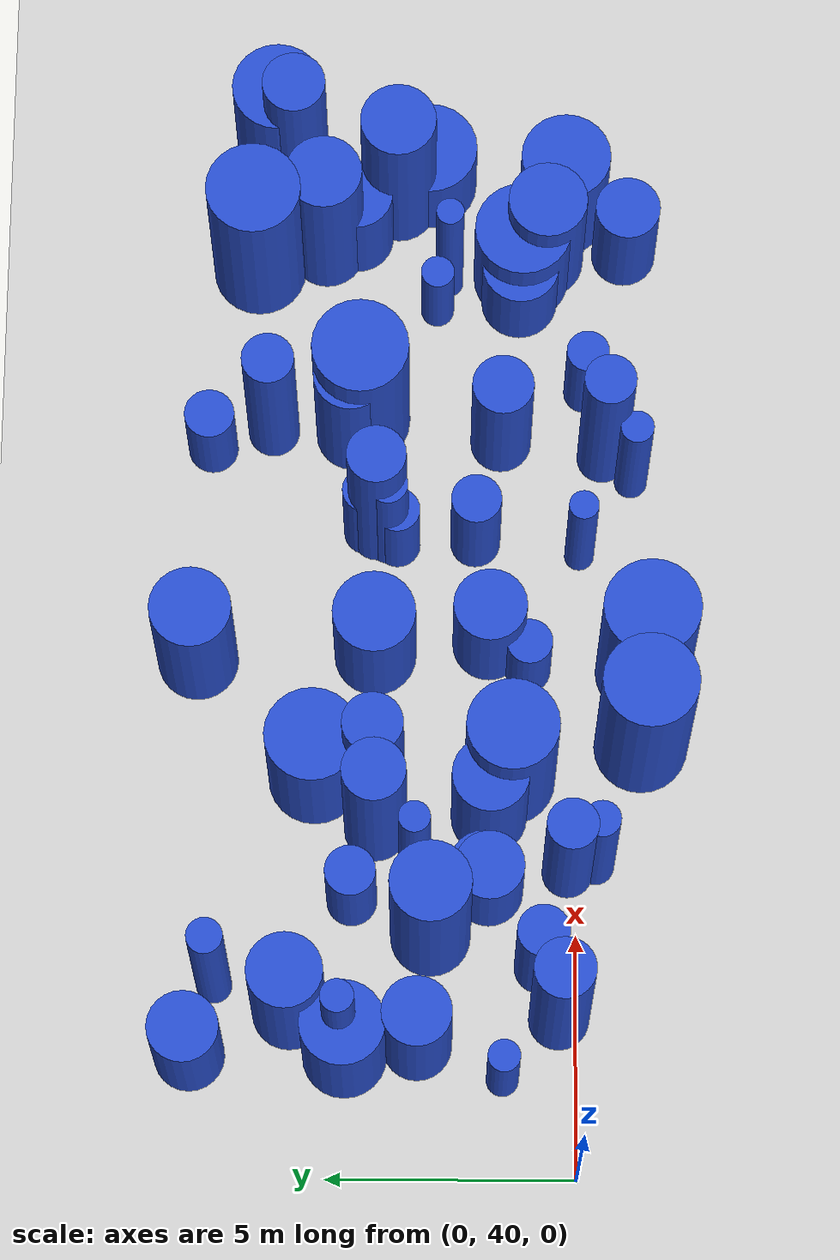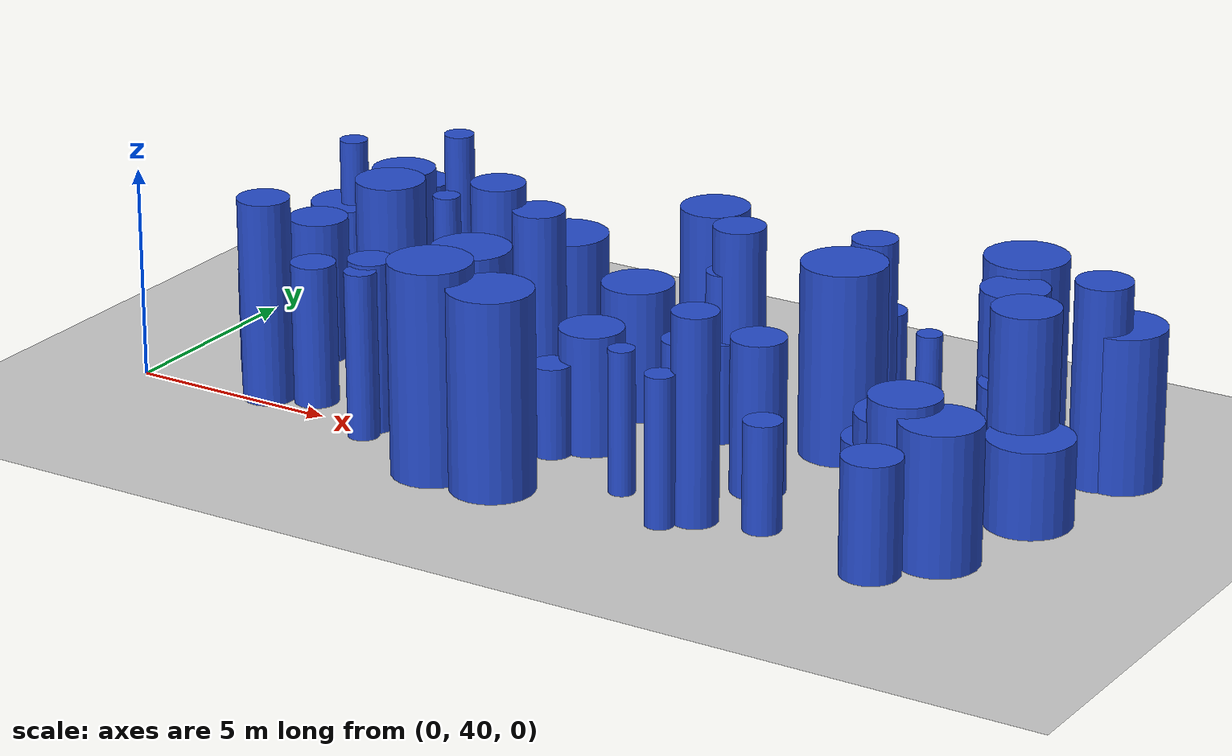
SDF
<sdf version="1.6">
 <world name="default">
  <model name="ground_plane">
   <static>1</static>
   <link name="link">
    <collision name="collision">
     <geometry><plane><normal>0 0 1</normal><size>100 100</size></plane></geometry>
     <surface><friction><ode><mu>100</mu><mu2>50</mu2></ode></friction></surface>
    </collision>
    <visual name="visual">
     <cast_shadows>0</cast_shadows>
     <geometry><plane><normal>0 0 1</normal><size>100 100</size></plane></geometry>
     <material>
      <script><uri>file://media/materials/scripts/gazebo.material</uri><name>Gazebo/Grey</name></script>
     </material>
    </visual>
   </link>
  </model>
  <model name="3">
   <static>0</static>
   <link name="link">
    <inertial>
     <mass>2</mass>
     <inertia><ixx>2.57983</ixx><ixy>0</ixy><ixz>0</ixz><iyy>2.57983</iyy><iyz>0</iyz><izz>0.566458</izz></inertia>
    </inertial>
    <collision name="collision">
     <geometry><cylinder><length>3.71209</length><radius>0.752634</radius></cylinder></geometry>
     <surface><contact><collide_without_contact>1</collide_without_contact></contact></surface>
    </collision>
    <visual name="visual">
     <geometry><cylinder><length>3.71209</length><radius>0.752634</radius></cylinder></geometry>
     <material>
      <script><uri>file://media/materials/scripts/gazebo.material</uri><name>Gazebo/Blue</name></script>
     </material>
    </visual>
    <gravity>0</gravity>
   </link>
   <pose>15.6778 44.6487 1.85604 0 -0 0</pose>
  </model>
  <model name="7">
   <static>0</static>
   <link name="link">
    <inertial>
     <mass>2</mass>
     <inertia><ixx>1.62705</ixx><ixy>0</ixy><ixz>0</ixz><iyy>1.62705</iyy><iyz>0</iyz><izz>0.555531</izz></inertia>
    </inertial>
    <collision name="collision">
     <geometry><cylinder><length>2.84529</length><radius>0.745339</radius></cylinder></geometry>
     <surface><contact><collide_without_contact>1</collide_without_contact></contact></surface>
    </collision>
    <visual name="visual">
     <geometry><cylinder><length>2.84529</length><radius>0.745339</radius></cylinder></geometry>
     <material>
      <script><uri>file://media/materials/scripts/gazebo.material</uri><name>Gazebo/Blue</name></script>
     </material>
    </visual>
    <gravity>0</gravity>
   </link>
   <pose>11.1182 41.7888 1.42265 0 -0 0</pose>
  </model>
  <model name="13">
   <static>0</static>
   <link name="link">
    <inertial>
     <mass>2</mass>
     <inertia><ixx>4.00177</ixx><ixy>0</ixy><ixz>0</ixz><iyy>4.00177</iyy><iyz>0</iyz><izz>0.275408</izz></inertia>
    </inertial>
    <collision name="collision">
     <geometry><cylinder><length>4.81501</length><radius>0.524793</radius></cylinder></geometry>
     <surface><contact><collide_without_contact>1</collide_without_contact></contact></surface>
    </collision>
    <visual name="visual">
     <geometry><cylinder><length>4.81501</length><radius>0.524793</radius></cylinder></geometry>
     <material>
      <script><uri>file://media/materials/scripts/gazebo.material</uri><name>Gazebo/Blue</name></script>
     </material>
    </visual>
    <gravity>0</gravity>
   </link>
   <pose>15.2098 39.4486 2.40751 0 -0 0</pose>
  </model>
  <model name="20">
   <static>0</static>
   <link name="link">
    <inertial>
     <mass>2</mass>
     <inertia><ixx>1.55555</ixx><ixy>0</ixy><ixz>0</ixz><iyy>1.55555</iyy><iyz>0</iyz><izz>0.262073</izz></inertia>
    </inertial>
    <collision name="collision">
     <geometry><cylinder><length>2.92354</length><radius>0.51193</radius></cylinder></geometry>
     <surface><contact><collide_without_contact>1</collide_without_contact></contact></surface>
    </collision>
    <visual name="visual">
     <geometry><cylinder><length>2.92354</length><radius>0.51193</radius></cylinder></geometry>
     <material>
      <script><uri>file://media/materials/scripts/gazebo.material</uri><name>Gazebo/Blue</name></script>
     </material>
    </visual>
    <gravity>0</gravity>
   </link>
   <pose>13.3245 42.0815 1.46177 0 -0 0</pose>
  </model>
  <model name="45">
   <static>0</static>
   <link name="link">
    <inertial>
     <mass>2</mass>
     <inertia><ixx>4.31175</ixx><ixy>0</ixy><ixz>0</ixz><iyy>4.31175</iyy><iyz>0</iyz><izz>0.358965</izz></inertia>
    </inertial>
    <collision name="collision">
     <geometry><cylinder><length>4.97932</length><radius>0.599137</radius></cylinder></geometry>
     <surface><contact><collide_without_contact>1</collide_without_contact></contact></surface>
    </collision>
    <visual name="visual">
     <geometry><cylinder><length>4.97932</length><radius>0.599137</radius></cylinder></geometry>
     <material>
      <script><uri>file://media/materials/scripts/gazebo.material</uri><name>Gazebo/Blue</name></script>
     </material>
    </visual>
    <gravity>0</gravity>
   </link>
   <pose>13.5394 44.0868 2.48966 0 -0 0</pose>
  </model>
  <model name="49">
   <static>0</static>
   <link name="link">
    <inertial>
     <mass>2</mass>
     <inertia><ixx>1.29707</ixx><ixy>0</ixy><ixz>0</ixz><iyy>1.29707</iyy><iyz>0</iyz><izz>0.551894</izz></inertia>
    </inertial>
    <collision name="collision">
     <geometry><cylinder><length>2.47522</length><radius>0.742895</radius></cylinder></geometry>
     <surface><contact><collide_without_contact>1</collide_without_contact></contact></surface>
    </collision>
    <visual name="visual">
     <geometry><cylinder><length>2.47522</length><radius>0.742895</radius></cylinder></geometry>
     <material>
      <script><uri>file://media/materials/scripts/gazebo.material</uri><name>Gazebo/Blue</name></script>
     </material>
    </visual>
    <gravity>0</gravity>
   </link>
   <pose>20.0997 44.5938 1.23761 0 -0 0</pose>
  </model>
  <model name="50">
   <static>0</static>
   <link name="link">
    <inertial>
     <mass>2</mass>
     <inertia><ixx>4.08319</ixx><ixy>0</ixy><ixz>0</ixz><iyy>4.08319</iyy><iyz>0</iyz><izz>0.947286</izz></inertia>
    </inertial>
    <collision name="collision">
     <geometry><cylinder><length>4.65374</length><radius>0.973286</radius></cylinder></geometry>
     <surface><contact><collide_without_contact>1</collide_without_contact></contact></surface>
    </collision>
    <visual name="visual">
     <geometry><cylinder><length>4.65374</length><radius>0.973286</radius></cylinder></geometry>
     <material>
      <script><uri>file://media/materials/scripts/gazebo.material</uri><name>Gazebo/Blue</name></script>
     </material>
    </visual>
    <gravity>0</gravity>
   </link>
   <pose>10.5505 38.6327 2.32687 0 -0 0</pose>
  </model>
  <model name="51">
   <static>0</static>
   <link name="link">
    <inertial>
     <mass>2</mass>
     <inertia><ixx>1.96723</ixx><ixy>0</ixy><ixz>0</ixz><iyy>1.96723</iyy><iyz>0</iyz><izz>0.705018</izz></inertia>
    </inertial>
    <collision name="collision">
     <geometry><cylinder><length>3.11261</length><radius>0.839654</radius></cylinder></geometry>
     <surface><contact><collide_without_contact>1</collide_without_contact></contact></surface>
    </collision>
    <visual name="visual">
     <geometry><cylinder><length>3.11261</length><radius>0.839654</radius></cylinder></geometry>
     <material>
      <script><uri>file://media/materials/scripts/gazebo.material</uri><name>Gazebo/Blue</name></script>
     </material>
    </visual>
    <gravity>0</gravity>
   </link>
   <pose>10.8716 44.1182 1.5563 0 -0 0</pose>
  </model>
  <model name="78">
   <static>0</static>
   <link name="link">
    <inertial>
     <mass>2</mass>
     <inertia><ixx>4.09063</ixx><ixy>0</ixy><ixz>0</ixz><iyy>4.09063</iyy><iyz>0</iyz><izz>0.371531</izz></inertia>
    </inertial>
    <collision name="collision">
     <geometry><cylinder><length>4.84037</length><radius>0.609533</radius></cylinder></geometry>
     <surface><contact><collide_without_contact>1</collide_without_contact></contact></surface>
    </collision>
    <visual name="visual">
     <geometry><cylinder><length>4.84037</length><radius>0.609533</radius></cylinder></geometry>
     <material>
      <script><uri>file://media/materials/scripts/gazebo.material</uri><name>Gazebo/Blue</name></script>
     </material>
    </visual>
    <gravity>0</gravity>
   </link>
   <pose>3.26079 40.3524 2.42019 0 -0 0</pose>
  </model>
  <model name="80">
   <static>0</static>
   <link name="link">
    <inertial>
     <mass>2</mass>
     <inertia><ixx>1.81109</ixx><ixy>0</ixy><ixz>0</ixz><iyy>1.81109</iyy><iyz>0</iyz><izz>0.995744</izz></inertia>
    </inertial>
    <collision name="collision">
     <geometry><cylinder><length>2.80701</length><radius>0.99787</radius></cylinder></geometry>
     <surface><contact><collide_without_contact>1</collide_without_contact></contact></surface>
    </collision>
    <visual name="visual">
     <geometry><cylinder><length>2.80701</length><radius>0.99787</radius></cylinder></geometry>
     <material>
      <script><uri>file://media/materials/scripts/gazebo.material</uri><name>Gazebo/Blue</name></script>
     </material>
    </visual>
    <gravity>0</gravity>
   </link>
   <pose>19.236 41.1477 1.40351 0 -0 0</pose>
  </model>
  <model name="84">
   <static>0</static>
   <link name="link">
    <inertial>
     <mass>2</mass>
     <inertia><ixx>3.5158</ixx><ixy>0</ixy><ixz>0</ixz><iyy>3.5158</iyy><iyz>0</iyz><izz>0.852529</izz></inertia>
    </inertial>
    <collision name="collision">
     <geometry><cylinder><length>4.30549</length><radius>0.923325</radius></cylinder></geometry>
     <surface><contact><collide_without_contact>1</collide_without_contact></contact></surface>
    </collision>
    <visual name="visual">
     <geometry><cylinder><length>4.30549</length><radius>0.923325</radius></cylinder></geometry>
     <material>
      <script><uri>file://media/materials/scripts/gazebo.material</uri><name>Gazebo/Blue</name></script>
     </material>
    </visual>
    <gravity>0</gravity>
   </link>
   <pose>8.22938 41.3509 2.15274 0 -0 0</pose>
  </model>
  <model name="87">
   <static>0</static>
   <link name="link">
    <inertial>
     <mass>2</mass>
     <inertia>
      <ixx>0.915313</ixx>
      <ixy>0</ixy>
      <ixz>0</ixz>
      <iyy>0.915313</iyy>
      <iyz>0</iyz>
      <izz>0.116767</izz>
     </inertia>
    </inertial>
    <collision name="collision">
     <geometry><cylinder><length>2.26751</length><radius>0.341712</radius></cylinder></geometry>
     <surface><contact><collide_without_contact>1</collide_without_contact></contact></surface>
    </collision>
    <visual name="visual">
     <geometry><cylinder><length>2.26751</length><radius>0.341712</radius></cylinder></geometry>
     <material>
      <script><uri>file://media/materials/scripts/gazebo.material</uri><name>Gazebo/Blue</name></script>
     </material>
    </visual>
    <gravity>0</gravity>
   </link>
   <pose>18.4759 42.9039 1.13375 0 -0 0</pose>
  </model>
  <model name="97">
   <static>0</static>
   <link name="link">
    <inertial>
     <mass>2</mass>
     <inertia><ixx>4.57511</ixx><ixy>0</ixy><ixz>0</ixz><iyy>4.57511</iyy><iyz>0</iyz><izz>0.91378</izz></inertia>
    </inertial>
    <collision name="collision">
     <geometry><cylinder><length>4.97085</length><radius>0.955918</radius></cylinder></geometry>
     <surface><contact><collide_without_contact>1</collide_without_contact></contact></surface>
    </collision>
    <visual name="visual">
     <geometry><cylinder><length>4.97085</length><radius>0.955918</radius></cylinder></geometry>
     <material>
      <script><uri>file://media/materials/scripts/gazebo.material</uri><name>Gazebo/Blue</name></script>
     </material>
    </visual>
    <gravity>0</gravity>
   </link>
   <pose>8.95716 38.6813 2.48542 0 -0 0</pose>
  </model>
  <model name="113">
   <static>0</static>
   <link name="link">
    <inertial>
     <mass>2</mass>
     <inertia>
      <ixx>1.90509</ixx>
      <ixy>0</ixy>
      <ixz>0</ixz>
      <iyy>1.90509</iyy>
      <iyz>0</iyz>
      <izz>0.0679389</izz>
     </inertia>
    </inertial>
    <collision name="collision">
     <geometry><cylinder><length>3.35063</length><radius>0.260651</radius></cylinder></geometry>
     <surface><contact><collide_without_contact>1</collide_without_contact></contact></surface>
    </collision>
    <visual name="visual">
     <geometry><cylinder><length>3.35063</length><radius>0.260651</radius></cylinder></geometry>
     <material>
      <script><uri>file://media/materials/scripts/gazebo.material</uri><name>Gazebo/Blue</name></script>
     </material>
    </visual>
    <gravity>0</gravity>
   </link>
   <pose>21.9005 46.319 1.67532 0 -0 0</pose>
  </model>
  <model name="118">
   <static>0</static>
   <link name="link">
    <inertial>
     <mass>2</mass>
     <inertia><ixx>2.33748</ixx><ixy>0</ixy><ixz>0</ixz><iyy>2.33748</iyy><iyz>0</iyz><izz>0.591398</izz></inertia>
    </inertial>
    <collision name="collision">
     <geometry><cylinder><length>3.5001</length><radius>0.769024</radius></cylinder></geometry>
     <surface><contact><collide_without_contact>1</collide_without_contact></contact></surface>
    </collision>
    <visual name="visual">
     <geometry><cylinder><length>3.5001</length><radius>0.769024</radius></cylinder></geometry>
     <material>
      <script><uri>file://media/materials/scripts/gazebo.material</uri><name>Gazebo/Blue</name></script>
     </material>
    </visual>
    <gravity>0</gravity>
   </link>
   <pose>7.44101 41.7735 1.75005 0 -0 0</pose>
  </model>
  <model name="119">
   <static>0</static>
   <link name="link">
    <inertial>
     <mass>2</mass>
     <inertia>
      <ixx>1.92856</ixx>
      <ixy>0</ixy>
      <ixz>0</ixz>
      <iyy>1.92856</iyy>
      <iyz>0</iyz>
      <izz>0.0917281</izz>
     </inertia>
    </inertial>
    <collision name="collision">
     <geometry><cylinder><length>3.36098</length><radius>0.302867</radius></cylinder></geometry>
     <surface><contact><collide_without_contact>1</collide_without_contact></contact></surface>
    </collision>
    <visual name="visual">
     <geometry><cylinder><length>3.36098</length><radius>0.302867</radius></cylinder></geometry>
     <material>
      <script><uri>file://media/materials/scripts/gazebo.material</uri><name>Gazebo/Blue</name></script>
     </material>
    </visual>
    <gravity>0</gravity>
   </link>
   <pose>13.0608 39.9307 1.68049 0 -0 0</pose>
  </model>
  <model name="139">
   <static>0</static>
   <link name="link">
    <inertial>
     <mass>2</mass>
     <inertia><ixx>4.20555</ixx><ixy>0</ixy><ixz>0</ixz><iyy>4.20555</iyy><iyz>0</iyz><izz>0.653615</izz></inertia>
    </inertial>
    <collision name="collision">
     <geometry><cylinder><length>4.82415</length><radius>0.808465</radius></cylinder></geometry>
     <surface><contact><collide_without_contact>1</collide_without_contact></contact></surface>
    </collision>
    <visual name="visual">
     <geometry><cylinder><length>4.82415</length><radius>0.808465</radius></cylinder></geometry>
     <material>
      <script><uri>file://media/materials/scripts/gazebo.material</uri><name>Gazebo/Blue</name></script>
     </material>
    </visual>
    <gravity>0</gravity>
   </link>
   <pose>4.9452 42.9406 2.41208 0 -0 0</pose>
  </model>
  <model name="149">
   <static>0</static>
   <link name="link">
    <inertial>
     <mass>2</mass>
     <inertia><ixx>2.64866</ixx><ixy>0</ixy><ixz>0</ixz><iyy>2.64866</iyy><iyz>0</iyz><izz>0.882997</izz></inertia>
    </inertial>
    <collision name="collision">
     <geometry><cylinder><length>3.63909</length><radius>0.939679</radius></cylinder></geometry>
     <surface><contact><collide_without_contact>1</collide_without_contact></contact></surface>
    </collision>
    <visual name="visual">
     <geometry><cylinder><length>3.63909</length><radius>0.939679</radius></cylinder></geometry>
     <material>
      <script><uri>file://media/materials/scripts/gazebo.material</uri><name>Gazebo/Blue</name></script>
     </material>
    </visual>
    <gravity>0</gravity>
   </link>
   <pose>21.9892 46.2278 1.81955 0 -0 0</pose>
  </model>
  <model name="151">
   <static>0</static>
   <link name="link">
    <inertial>
     <mass>2</mass>
     <inertia><ixx>2.20462</ixx><ixy>0</ixy><ixz>0</ixz><iyy>2.20462</iyy><iyz>0</iyz><izz>0.718294</izz></inertia>
    </inertial>
    <collision name="collision">
     <geometry><cylinder><length>3.32759</length><radius>0.847522</radius></cylinder></geometry>
     <surface><contact><collide_without_contact>1</collide_without_contact></contact></surface>
    </collision>
    <visual name="visual">
     <geometry><cylinder><length>3.32759</length><radius>0.847522</radius></cylinder></geometry>
     <material>
      <script><uri>file://media/materials/scripts/gazebo.material</uri><name>Gazebo/Blue</name></script>
     </material>
    </visual>
    <gravity>0</gravity>
   </link>
   <pose>2.48471 44.6349 1.6638 0 -0 0</pose>
  </model>
  <model name="155">
   <static>0</static>
   <link name="link">
    <inertial>
     <mass>2</mass>
     <inertia><ixx>2.83162</ixx><ixy>0</ixy><ixz>0</ixz><iyy>2.83162</iyy><iyz>0</iyz><izz>0.267931</izz></inertia>
    </inertial>
    <collision name="collision">
     <geometry><cylinder><length>4.02317</length><radius>0.517621</radius></cylinder></geometry>
     <surface><contact><collide_without_contact>1</collide_without_contact></contact></surface>
    </collision>
    <visual name="visual">
     <geometry><cylinder><length>4.02317</length><radius>0.517621</radius></cylinder></geometry>
     <material>
      <script><uri>file://media/materials/scripts/gazebo.material</uri><name>Gazebo/Blue</name></script>
     </material>
    </visual>
    <gravity>0</gravity>
   </link>
   <pose>6.3046 40.1762 2.01159 0 -0 0</pose>
  </model>
  <model name="170">
   <static>0</static>
   <link name="link">
    <inertial>
     <mass>2</mass>
     <inertia><ixx>2.04502</ixx><ixy>0</ixy><ixz>0</ixz><iyy>2.04502</iyy><iyz>0</iyz><izz>0.272594</izz></inertia>
    </inertial>
    <collision name="collision">
     <geometry><cylinder><length>3.38413</length><radius>0.522105</radius></cylinder></geometry>
     <surface><contact><collide_without_contact>1</collide_without_contact></contact></surface>
    </collision>
    <visual name="visual">
     <geometry><cylinder><length>3.38413</length><radius>0.522105</radius></cylinder></geometry>
     <material>
      <script><uri>file://media/materials/scripts/gazebo.material</uri><name>Gazebo/Blue</name></script>
     </material>
    </visual>
    <gravity>0</gravity>
   </link>
   <pose>4.32502 40.7291 1.69206 0 -0 0</pose>
  </model>
  <model name="188">
   <static>0</static>
   <link name="link">
    <inertial>
     <mass>2</mass>
     <inertia><ixx>2.39885</ixx><ixy>0</ixy><ixz>0</ixz><iyy>2.39885</iyy><iyz>0</iyz><izz>0.903742</izz></inertia>
    </inertial>
    <collision name="collision">
     <geometry><cylinder><length>3.41787</length><radius>0.950653</radius></cylinder></geometry>
     <surface><contact><collide_without_contact>1</collide_without_contact></contact></surface>
    </collision>
    <visual name="visual">
     <geometry><cylinder><length>3.41787</length><radius>0.950653</radius></cylinder></geometry>
     <material>
      <script><uri>file://media/materials/scripts/gazebo.material</uri><name>Gazebo/Blue</name></script>
     </material>
    </visual>
    <gravity>0</gravity>
   </link>
   <pose>8.23711 45.3141 1.70894 0 -0 0</pose>
  </model>
  <model name="190">
   <static>0</static>
   <link name="link">
    <inertial>
     <mass>2</mass>
     <inertia><ixx>1.03917</ixx><ixy>0</ixy><ixz>0</ixz><iyy>1.03917</iyy><iyz>0</iyz><izz>0.215799</izz></inertia>
    </inertial>
    <collision name="collision">
     <geometry><cylinder><length>2.36382</length><radius>0.464542</radius></cylinder></geometry>
     <surface><contact><collide_without_contact>1</collide_without_contact></contact></surface>
    </collision>
    <visual name="visual">
     <geometry><cylinder><length>2.36382</length><radius>0.464542</radius></cylinder></geometry>
     <material>
      <script><uri>file://media/materials/scripts/gazebo.material</uri><name>Gazebo/Blue</name></script>
     </material>
    </visual>
    <gravity>0</gravity>
   </link>
   <pose>13.2619 43.6858 1.18191 0 -0 0</pose>
  </model>
  <model name="195">
   <static>0</static>
   <link name="link">
    <inertial>
     <mass>2</mass>
     <inertia><ixx>3.85048</ixx><ixy>0</ixy><ixz>0</ixz><iyy>3.85048</iyy><iyz>0</iyz><izz>0.964794</izz></inertia>
    </inertial>
    <collision name="collision">
     <geometry><cylinder><length>4.49539</length><radius>0.982239</radius></cylinder></geometry>
     <surface><contact><collide_without_contact>1</collide_without_contact></contact></surface>
    </collision>
    <visual name="visual">
     <geometry><cylinder><length>4.49539</length><radius>0.982239</radius></cylinder></geometry>
     <material>
      <script><uri>file://media/materials/scripts/gazebo.material</uri><name>Gazebo/Blue</name></script>
     </material>
    </visual>
    <gravity>0</gravity>
   </link>
   <pose>16.0033 44.4438 2.24769 0 -0 0</pose>
  </model>
  <model name="198">
   <static>0</static>
   <link name="link">
    <inertial>
     <mass>2</mass>
     <inertia><ixx>1.39907</ixx><ixy>0</ixy><ixz>0</ixz><iyy>1.39907</iyy><iyz>0</iyz><izz>0.223634</izz></inertia>
    </inertial>
    <collision name="collision">
     <geometry><cylinder><length>2.77912</length><radius>0.472899</radius></cylinder></geometry>
     <surface><contact><collide_without_contact>1</collide_without_contact></contact></surface>
    </collision>
    <visual name="visual">
     <geometry><cylinder><length>2.77912</length><radius>0.472899</radius></cylinder></geometry>
     <material>
      <script><uri>file://media/materials/scripts/gazebo.material</uri><name>Gazebo/Blue</name></script>
     </material>
    </visual>
    <gravity>0</gravity>
   </link>
   <pose>13.5424 44.3259 1.38956 0 -0 0</pose>
  </model>
  <model name="199">
   <static>0</static>
   <link name="link">
    <inertial>
     <mass>2</mass>
     <inertia><ixx>3.99655</ixx><ixy>0</ixy><ixz>0</ixz><iyy>3.99655</iyy><iyz>0</iyz><izz>0.10954</izz></inertia>
    </inertial>
    <collision name="collision">
     <geometry><cylinder><length>4.8632</length><radius>0.330968</radius></cylinder></geometry>
     <surface><contact><collide_without_contact>1</collide_without_contact></contact></surface>
    </collision>
    <visual name="visual">
     <geometry><cylinder><length>4.8632</length><radius>0.330968</radius></cylinder></geometry>
     <material>
      <script><uri>file://media/materials/scripts/gazebo.material</uri><name>Gazebo/Blue</name></script>
     </material>
    </visual>
    <gravity>0</gravity>
   </link>
   <pose>2.6743 44.7081 2.4316 0 -0 0</pose>
  </model>
  <model name="200">
   <static>0</static>
   <link name="link">
    <inertial>
     <mass>2</mass>
     <inertia><ixx>2.3421</ixx><ixy>0</ixy><ixz>0</ixz><iyy>2.3421</iyy><iyz>0</iyz><izz>0.392913</izz></inertia>
    </inertial>
    <collision name="collision">
     <geometry><cylinder><length>3.58802</length><radius>0.626828</radius></cylinder></geometry>
     <surface><contact><collide_without_contact>1</collide_without_contact></contact></surface>
    </collision>
    <visual name="visual">
     <geometry><cylinder><length>3.58802</length><radius>0.626828</radius></cylinder></geometry>
     <material>
      <script><uri>file://media/materials/scripts/gazebo.material</uri><name>Gazebo/Blue</name></script>
     </material>
    </visual>
    <gravity>0</gravity>
   </link>
   <pose>15.5305 41.5624 1.79401 0 -0 0</pose>
  </model>
  <model name="207">
   <static>0</static>
   <link name="link">
    <inertial>
     <mass>2</mass>
     <inertia><ixx>3.8894</ixx><ixy>0</ixy><ixz>0</ixz><iyy>3.8894</iyy><iyz>0</iyz><izz>0.600913</izz></inertia>
    </inertial>
    <collision name="collision">
     <geometry><cylinder><length>4.64044</length><radius>0.775186</radius></cylinder></geometry>
     <surface><contact><collide_without_contact>1</collide_without_contact></contact></surface>
    </collision>
    <visual name="visual">
     <geometry><cylinder><length>4.64044</length><radius>0.775186</radius></cylinder></geometry>
     <material>
      <script><uri>file://media/materials/scripts/gazebo.material</uri><name>Gazebo/Blue</name></script>
     </material>
    </visual>
    <gravity>0</gravity>
   </link>
   <pose>20.8363 43.7305 2.32022 0 -0 0</pose>
  </model>
  <model name="223">
   <static>0</static>
   <link name="link">
    <inertial>
     <mass>2</mass>
     <inertia><ixx>4.06294</ixx><ixy>0</ixy><ixz>0</ixz><iyy>4.06294</iyy><iyz>0</iyz><izz>0.409572</izz></inertia>
    </inertial>
    <collision name="collision">
     <geometry><cylinder><length>4.81133</length><radius>0.639978</radius></cylinder></geometry>
     <surface><contact><collide_without_contact>1</collide_without_contact></contact></surface>
    </collision>
    <visual name="visual">
     <geometry><cylinder><length>4.81133</length><radius>0.639978</radius></cylinder></geometry>
     <material>
      <script><uri>file://media/materials/scripts/gazebo.material</uri><name>Gazebo/Blue</name></script>
     </material>
    </visual>
    <gravity>0</gravity>
   </link>
   <pose>7.15701 44.0655 2.40566 0 -0 0</pose>
  </model>
  <model name="228">
   <static>0</static>
   <link name="link">
    <inertial>
     <mass>2</mass>
     <inertia><ixx>3.89679</ixx><ixy>0</ixy><ixz>0</ixz><iyy>3.89679</iyy><iyz>0</iyz><izz>0.417637</izz></inertia>
    </inertial>
    <collision name="collision">
     <geometry><cylinder><length>4.70402</length><radius>0.646248</radius></cylinder></geometry>
     <surface><contact><collide_without_contact>1</collide_without_contact></contact></surface>
    </collision>
    <visual name="visual">
     <geometry><cylinder><length>4.70402</length><radius>0.646248</radius></cylinder></geometry>
     <material>
      <script><uri>file://media/materials/scripts/gazebo.material</uri><name>Gazebo/Blue</name></script>
     </material>
    </visual>
    <gravity>0</gravity>
   </link>
   <pose>21.617 45.8694 2.35201 0 -0 0</pose>
  </model>
  <model name="229">
   <static>0</static>
   <link name="link">
    <inertial>
     <mass>2</mass>
     <inertia><ixx>1.1566</ixx><ixy>0</ixy><ixz>0</ixz><iyy>1.1566</iyy><iyz>0</iyz><izz>0.973857</izz></inertia>
    </inertial>
    <collision name="collision">
     <geometry><cylinder><length>2.0045</length><radius>0.986842</radius></cylinder></geometry>
     <surface><contact><collide_without_contact>1</collide_without_contact></contact></surface>
    </collision>
    <visual name="visual">
     <geometry><cylinder><length>2.0045</length><radius>0.986842</radius></cylinder></geometry>
     <material>
      <script><uri>file://media/materials/scripts/gazebo.material</uri><name>Gazebo/Blue</name></script>
     </material>
    </visual>
    <gravity>0</gravity>
   </link>
   <pose>21.3527 43.0901 1.00225 0 -0 0</pose>
  </model>
  <model name="233">
   <static>0</static>
   <link name="link">
    <inertial>
     <mass>2</mass>
     <inertia><ixx>1.04622</ixx><ixy>0</ixy><ixz>0</ixz><iyy>1.04622</iyy><iyz>0</iyz><izz>0.62655</izz></inertia>
    </inertial>
    <collision name="collision">
     <geometry><cylinder><length>2.09707</length><radius>0.791549</radius></cylinder></geometry>
     <surface><contact><collide_without_contact>1</collide_without_contact></contact></surface>
    </collision>
    <visual name="visual">
     <geometry><cylinder><length>2.09707</length><radius>0.791549</radius></cylinder></geometry>
     <material>
      <script><uri>file://media/materials/scripts/gazebo.material</uri><name>Gazebo/Blue</name></script>
     </material>
    </visual>
    <gravity>0</gravity>
   </link>
   <pose>18.6839 41.1884 1.04853 0 -0 0</pose>
  </model>
  <model name="238">
   <static>0</static>
   <link name="link">
    <inertial>
     <mass>2</mass>
     <inertia><ixx>1.67716</ixx><ixy>0</ixy><ixz>0</ixz><iyy>1.67716</iyy><iyz>0</iyz><izz>0.503337</izz></inertia>
    </inertial>
    <collision name="collision">
     <geometry><cylinder><length>2.92454</length><radius>0.709462</radius></cylinder></geometry>
     <surface><contact><collide_without_contact>1</collide_without_contact></contact></surface>
    </collision>
    <visual name="visual">
     <geometry><cylinder><length>2.92454</length><radius>0.709462</radius></cylinder></geometry>
     <material>
      <script><uri>file://media/materials/scripts/gazebo.material</uri><name>Gazebo/Blue</name></script>
     </material>
    </visual>
    <gravity>0</gravity>
   </link>
   <pose>2.46278 47.7417 1.46227 0 -0 0</pose>
  </model>
  <model name="241">
   <static>0</static>
   <link name="link">
    <inertial>
     <mass>2</mass>
     <inertia><ixx>2.07604</ixx><ixy>0</ixy><ixz>0</ixz><iyy>2.07604</iyy><iyz>0</iyz><izz>0.114754</izz></inertia>
    </inertial>
    <collision name="collision">
     <geometry><cylinder><length>3.48022</length><radius>0.338753</radius></cylinder></geometry>
     <surface><contact><collide_without_contact>1</collide_without_contact></contact></surface>
    </collision>
    <visual name="visual">
     <geometry><cylinder><length>3.48022</length><radius>0.338753</radius></cylinder></geometry>
     <material>
      <script><uri>file://media/materials/scripts/gazebo.material</uri><name>Gazebo/Blue</name></script>
     </material>
    </visual>
    <gravity>0</gravity>
   </link>
   <pose>14.6877 38.8595 1.74011 0 -0 0</pose>
  </model>
  <model name="242">
   <static>0</static>
   <link name="link">
    <inertial>
     <mass>2</mass>
     <inertia><ixx>2.29349</ixx><ixy>0</ixy><ixz>0</ixz><iyy>2.29349</iyy><iyz>0</iyz><izz>0.657443</izz></inertia>
    </inertial>
    <collision name="collision">
     <geometry><cylinder><length>3.43346</length><radius>0.810829</radius></cylinder></geometry>
     <surface><contact><collide_without_contact>1</collide_without_contact></contact></surface>
    </collision>
    <visual name="visual">
     <geometry><cylinder><length>3.43346</length><radius>0.810829</radius></cylinder></geometry>
     <material>
      <script><uri>file://media/materials/scripts/gazebo.material</uri><name>Gazebo/Blue</name></script>
     </material>
    </visual>
    <gravity>0</gravity>
   </link>
   <pose>19.6193 40.6578 1.71673 0 -0 0</pose>
  </model>
  <model name="246">
   <static>0</static>
   <link name="link">
    <inertial>
     <mass>2</mass>
     <inertia><ixx>1.04546</ixx><ixy>0</ixy><ixz>0</ixz><iyy>1.04546</iyy><iyz>0</iyz><izz>0.451553</izz></inertia>
    </inertial>
    <collision name="collision">
     <geometry><cylinder><length>2.21768</length><radius>0.671977</radius></cylinder></geometry>
     <surface><contact><collide_without_contact>1</collide_without_contact></contact></surface>
    </collision>
    <visual name="visual">
     <geometry><cylinder><length>2.21768</length><radius>0.671977</radius></cylinder></geometry>
     <material>
      <script><uri>file://media/materials/scripts/gazebo.material</uri><name>Gazebo/Blue</name></script>
     </material>
    </visual>
    <gravity>0</gravity>
   </link>
   <pose>5.94914 41.8862 1.10884 0 -0 0</pose>
  </model>
  <model name="248">
   <static>0</static>
   <link name="link">
    <inertial>
     <mass>2</mass>
     <inertia><ixx>3.39187</ixx><ixy>0</ixy><ixz>0</ixz><iyy>3.39187</iyy><iyz>0</iyz><izz>0.283691</izz></inertia>
    </inertial>
    <collision name="collision">
     <geometry><cylinder><length>4.4159</length><radius>0.532627</radius></cylinder></geometry>
     <surface><contact><collide_without_contact>1</collide_without_contact></contact></surface>
    </collision>
    <visual name="visual">
     <geometry><cylinder><length>4.4159</length><radius>0.532627</radius></cylinder></geometry>
     <material>
      <script><uri>file://media/materials/scripts/gazebo.material</uri><name>Gazebo/Blue</name></script>
     </material>
    </visual>
    <gravity>0</gravity>
   </link>
   <pose>15.7405 46.2928 2.20795 0 -0 0</pose>
  </model>
  <model name="257">
   <static>0</static>
   <link name="link">
    <inertial>
     <mass>2</mass>
     <inertia><ixx>3.9849</ixx><ixy>0</ixy><ixz>0</ixz><iyy>3.9849</iyy><iyz>0</iyz><izz>0.931676</izz></inertia>
    </inertial>
    <collision name="collision">
     <geometry><cylinder><length>4.59504</length><radius>0.965234</radius></cylinder></geometry>
     <surface><contact><collide_without_contact>1</collide_without_contact></contact></surface>
    </collision>
    <visual name="visual">
     <geometry><cylinder><length>4.59504</length><radius>0.965234</radius></cylinder></geometry>
     <material>
      <script><uri>file://media/materials/scripts/gazebo.material</uri><name>Gazebo/Blue</name></script>
     </material>
    </visual>
    <gravity>0</gravity>
   </link>
   <pose>19.3403 46.6537 2.29752 0 -0 0</pose>
  </model>
  <model name="265">
   <static>0</static>
   <link name="link">
    <inertial>
     <mass>2</mass>
     <inertia><ixx>2.92827</ixx><ixy>0</ixy><ixz>0</ixz><iyy>2.92827</iyy><iyz>0</iyz><izz>0.567818</izz></inertia>
    </inertial>
    <collision name="collision">
     <geometry><cylinder><length>3.98323</length><radius>0.753537</radius></cylinder></geometry>
     <surface><contact><collide_without_contact>1</collide_without_contact></contact></surface>
    </collision>
    <visual name="visual">
     <geometry><cylinder><length>3.98323</length><radius>0.753537</radius></cylinder></geometry>
     <material>
      <script><uri>file://media/materials/scripts/gazebo.material</uri><name>Gazebo/Blue</name></script>
     </material>
    </visual>
    <gravity>0</gravity>
   </link>
   <pose>3.36315 45.7477 1.99162 0 -0 0</pose>
  </model>
  <model name="280">
   <static>0</static>
   <link name="link">
    <inertial>
     <mass>2</mass>
     <inertia><ixx>2.64761</ixx><ixy>0</ixy><ixz>0</ixz><iyy>2.64761</iyy><iyz>0</iyz><izz>0.135025</izz></inertia>
    </inertial>
    <collision name="collision">
     <geometry><cylinder><length>3.93454</length><radius>0.367457</radius></cylinder></geometry>
     <surface><contact><collide_without_contact>1</collide_without_contact></contact></surface>
    </collision>
    <visual name="visual">
     <geometry><cylinder><length>3.93454</length><radius>0.367457</radius></cylinder></geometry>
     <material>
      <script><uri>file://media/materials/scripts/gazebo.material</uri><name>Gazebo/Blue</name></script>
     </material>
    </visual>
    <gravity>0</gravity>
   </link>
   <pose>6.43365 39.5996 1.96727 0 -0 0</pose>
  </model>
  <model name="284">
   <static>0</static>
   <link name="link">
    <inertial>
     <mass>2</mass>
     <inertia><ixx>3.54887</ixx><ixy>0</ixy><ixz>0</ixz><iyy>3.54887</iyy><iyz>0</iyz><izz>0.10048</izz></inertia>
    </inertial>
    <collision name="collision">
     <geometry><cylinder><length>4.58168</length><radius>0.316986</radius></cylinder></geometry>
     <surface><contact><collide_without_contact>1</collide_without_contact></contact></surface>
    </collision>
    <visual name="visual">
     <geometry><cylinder><length>4.58168</length><radius>0.316986</radius></cylinder></geometry>
     <material>
      <script><uri>file://media/materials/scripts/gazebo.material</uri><name>Gazebo/Blue</name></script>
     </material>
    </visual>
    <gravity>0</gravity>
   </link>
   <pose>6.27377 43.265 2.29084 0 -0 0</pose>
  </model>
  <model name="330">
   <static>0</static>
   <link name="link">
    <inertial>
     <mass>2</mass>
     <inertia><ixx>1.4139</ixx><ixy>0</ixy><ixz>0</ixz><iyy>1.4139</iyy><iyz>0</iyz><izz>0.44708</izz></inertia>
    </inertial>
    <collision name="collision">
     <geometry><cylinder><length>2.67249</length><radius>0.668641</radius></cylinder></geometry>
     <surface><contact><collide_without_contact>1</collide_without_contact></contact></surface>
    </collision>
    <visual name="visual">
     <geometry><cylinder><length>2.67249</length><radius>0.668641</radius></cylinder></geometry>
     <material>
      <script><uri>file://media/materials/scripts/gazebo.material</uri><name>Gazebo/Blue</name></script>
     </material>
    </visual>
    <gravity>0</gravity>
   </link>
   <pose>19.7615 38.9932 1.33624 0 -0 0</pose>
  </model>
  <model name="342">
   <static>0</static>
   <link name="link">
    <inertial>
     <mass>2</mass>
     <inertia><ixx>3.51338</ixx><ixy>0</ixy><ixz>0</ixz><iyy>3.51338</iyy><iyz>0</iyz><izz>0.609566</izz></inertia>
    </inertial>
    <collision name="collision">
     <geometry><cylinder><length>4.38766</length><radius>0.780747</radius></cylinder></geometry>
     <surface><contact><collide_without_contact>1</collide_without_contact></contact></surface>
    </collision>
    <visual name="visual">
     <geometry><cylinder><length>4.38766</length><radius>0.780747</radius></cylinder></geometry>
     <material>
      <script><uri>file://media/materials/scripts/gazebo.material</uri><name>Gazebo/Blue</name></script>
     </material>
    </visual>
    <gravity>0</gravity>
   </link>
   <pose>19.7935 45.2377 2.19383 0 -0 0</pose>
  </model>
  <model name="345">
   <static>0</static>
   <link name="link">
    <inertial>
     <mass>2</mass>
     <inertia>
      <ixx>0.953451</ixx>
      <ixy>0</ixy>
      <ixz>0</ixz>
      <iyy>0.953451</iyy>
      <iyz>0</iyz>
      <izz>0.264322</izz>
     </inertia>
    </inertial>
    <collision name="collision">
     <geometry><cylinder><length>2.21985</length><radius>0.514123</radius></cylinder></geometry>
     <surface><contact><collide_without_contact>1</collide_without_contact></contact></surface>
    </collision>
    <visual name="visual">
     <geometry><cylinder><length>2.21985</length><radius>0.514123</radius></cylinder></geometry>
     <material>
      <script><uri>file://media/materials/scripts/gazebo.material</uri><name>Gazebo/Blue</name></script>
     </material>
    </visual>
    <gravity>0</gravity>
   </link>
   <pose>15.3448 47.5494 1.10993 0 -0 0</pose>
  </model>
  <model name="361">
   <static>0</static>
   <link name="link">
    <inertial>
     <mass>2</mass>
     <inertia><ixx>2.14155</ixx><ixy>0</ixy><ixz>0</ixz><iyy>2.14155</iyy><iyz>0</iyz><izz>0.847478</izz></inertia>
    </inertial>
    <collision name="collision">
     <geometry><cylinder><length>3.21043</length><radius>0.920586</radius></cylinder></geometry>
     <surface><contact><collide_without_contact>1</collide_without_contact></contact></surface>
    </collision>
    <visual name="visual">
     <geometry><cylinder><length>3.21043</length><radius>0.920586</radius></cylinder></geometry>
     <material>
      <script><uri>file://media/materials/scripts/gazebo.material</uri><name>Gazebo/Blue</name></script>
     </material>
    </visual>
    <gravity>0</gravity>
   </link>
   <pose>20.6783 40.2806 1.60522 0 -0 0</pose>
  </model>
  <model name="370">
   <static>0</static>
   <link name="link">
    <inertial>
     <mass>2</mass>
     <inertia><ixx>2.18728</ixx><ixy>0</ixy><ixz>0</ixz><iyy>2.18728</iyy><iyz>0</iyz><izz>0.486485</izz></inertia>
    </inertial>
    <collision name="collision">
     <geometry><cylinder><length>3.41529</length><radius>0.697485</radius></cylinder></geometry>
     <surface><contact><collide_without_contact>1</collide_without_contact></contact></surface>
    </collision>
    <visual name="visual">
     <geometry><cylinder><length>3.41529</length><radius>0.697485</radius></cylinder></geometry>
     <material>
      <script><uri>file://media/materials/scripts/gazebo.material</uri><name>Gazebo/Blue</name></script>
     </material>
    </visual>
    <gravity>0</gravity>
   </link>
   <pose>2.70122 43.188 1.70765 0 -0 0</pose>
  </model>
  <model name="373">
   <static>0</static>
   <link name="link">
    <inertial>
     <mass>2</mass>
     <inertia><ixx>3.33339</ixx><ixy>0</ixy><ixz>0</ixz><iyy>3.33339</iyy><iyz>0</iyz><izz>0.375404</izz></inertia>
    </inertial>
    <collision name="collision">
     <geometry><cylinder><length>4.34444</length><radius>0.612703</radius></cylinder></geometry>
     <surface><contact><collide_without_contact>1</collide_without_contact></contact></surface>
    </collision>
    <visual name="visual">
     <geometry><cylinder><length>4.34444</length><radius>0.612703</radius></cylinder></geometry>
     <material>
      <script><uri>file://media/materials/scripts/gazebo.material</uri><name>Gazebo/Blue</name></script>
     </material>
    </visual>
    <gravity>0</gravity>
   </link>
   <pose>8.22939 44.1037 2.17222 0 -0 0</pose>
  </model>
  <model name="409">
   <static>0</static>
   <link name="link">
    <inertial>
     <mass>2</mass>
     <inertia><ixx>3.40767</ixx><ixy>0</ixy><ixz>0</ixz><iyy>3.40767</iyy><iyz>0</iyz><izz>0.129093</izz></inertia>
    </inertial>
    <collision name="collision">
     <geometry><cylinder><length>4.4787</length><radius>0.359295</radius></cylinder></geometry>
     <surface><contact><collide_without_contact>1</collide_without_contact></contact></surface>
    </collision>
    <visual name="visual">
     <geometry><cylinder><length>4.4787</length><radius>0.359295</radius></cylinder></geometry>
     <material>
      <script><uri>file://media/materials/scripts/gazebo.material</uri><name>Gazebo/Blue</name></script>
     </material>
    </visual>
    <gravity>0</gravity>
   </link>
   <pose>3.90648 47.2774 2.23935 0 -0 0</pose>
  </model>
  <model name="414">
   <static>0</static>
   <link name="link">
    <inertial>
     <mass>2</mass>
     <inertia><ixx>1.14513</ixx><ixy>0</ixy><ixz>0</ixz><iyy>1.14513</iyy><iyz>0</iyz><izz>0.190993</izz></inertia>
    </inertial>
    <collision name="collision">
     <geometry><cylinder><length>2.50955</length><radius>0.437027</radius></cylinder></geometry>
     <surface><contact><collide_without_contact>1</collide_without_contact></contact></surface>
    </collision>
    <visual name="visual">
     <geometry><cylinder><length>2.50955</length><radius>0.437027</radius></cylinder></geometry>
     <material>
      <script><uri>file://media/materials/scripts/gazebo.material</uri><name>Gazebo/Blue</name></script>
     </material>
    </visual>
    <gravity>0</gravity>
   </link>
   <pose>16.6654 39.8146 1.25477 0 -0 0</pose>
  </model>
  <model name="415">
   <static>0</static>
   <link name="link">
    <inertial>
     <mass>2</mass>
     <inertia><ixx>2.73571</ixx><ixy>0</ixy><ixz>0</ixz><iyy>2.73571</iyy><iyz>0</iyz><izz>0.680036</izz></inertia>
    </inertial>
    <collision name="collision">
     <geometry><cylinder><length>3.79133</length><radius>0.824643</radius></cylinder></geometry>
     <surface><contact><collide_without_contact>1</collide_without_contact></contact></surface>
    </collision>
    <visual name="visual">
     <geometry><cylinder><length>3.79133</length><radius>0.824643</radius></cylinder></geometry>
     <material>
      <script><uri>file://media/materials/scripts/gazebo.material</uri><name>Gazebo/Blue</name></script>
     </material>
    </visual>
    <gravity>0</gravity>
   </link>
   <pose>10.7214 47.756 1.89566 0 -0 0</pose>
  </model>
  <model name="426">
   <static>0</static>
   <link name="link">
    <inertial>
     <mass>2</mass>
     <inertia><ixx>1.16662</ixx><ixy>0</ixy><ixz>0</ixz><iyy>1.16662</iyy><iyz>0</iyz><izz>0.488435</izz></inertia>
    </inertial>
    <collision name="collision">
     <geometry><cylinder><length>2.35253</length><radius>0.698881</radius></cylinder></geometry>
     <surface><contact><collide_without_contact>1</collide_without_contact></contact></surface>
    </collision>
    <visual name="visual">
     <geometry><cylinder><length>2.35253</length><radius>0.698881</radius></cylinder></geometry>
     <material>
      <script><uri>file://media/materials/scripts/gazebo.material</uri><name>Gazebo/Blue</name></script>
     </material>
    </visual>
    <gravity>0</gravity>
   </link>
   <pose>5.88523 41.7735 1.17626 0 -0 0</pose>
  </model>
  <model name="428">
   <static>0</static>
   <link name="link">
    <inertial>
     <mass>2</mass>
     <inertia><ixx>2.65782</ixx><ixy>0</ixy><ixz>0</ixz><iyy>2.65782</iyy><iyz>0</iyz><izz>0.164064</izz></inertia>
    </inertial>
    <collision name="collision">
     <geometry><cylinder><length>3.93125</length><radius>0.405049</radius></cylinder></geometry>
     <surface><contact><collide_without_contact>1</collide_without_contact></contact></surface>
    </collision>
    <visual name="visual">
     <geometry><cylinder><length>3.93125</length><radius>0.405049</radius></cylinder></geometry>
     <material>
      <script><uri>file://media/materials/scripts/gazebo.material</uri><name>Gazebo/Blue</name></script>
     </material>
    </visual>
    <gravity>0</gravity>
   </link>
   <pose>13.2729 43.8642 1.96563 0 -0 0</pose>
  </model>
  <model name="437">
   <static>0</static>
   <link name="link">
    <inertial>
     <mass>2</mass>
     <inertia>
      <ixx>2.74793</ixx>
      <ixy>0</ixy>
      <ixz>0</ixz>
      <iyy>2.74793</iyy>
      <iyz>0</iyz>
      <izz>0.0808397</izz>
     </inertia>
    </inertial>
    <collision name="collision">
     <geometry><cylinder><length>4.03052</length><radius>0.284323</radius></cylinder></geometry>
     <surface><contact><collide_without_contact>1</collide_without_contact></contact></surface>
    </collision>
    <visual name="visual">
     <geometry><cylinder><length>4.03052</length><radius>0.284323</radius></cylinder></geometry>
     <material>
      <script><uri>file://media/materials/scripts/gazebo.material</uri><name>Gazebo/Blue</name></script>
     </material>
    </visual>
    <gravity>0</gravity>
   </link>
   <pose>19.0926 42.6613 2.01526 0 -0 0</pose>
  </model>
  <model name="442">
   <static>0</static>
   <link name="link">
    <inertial>
     <mass>2</mass>
     <inertia>
      <ixx>0.869342</ixx>
      <ixy>0</ixy>
      <ixz>0</ixz>
      <iyy>0.869342</iyy>
      <iyz>0</iyz>
      <izz>0.216681</izz>
     </inertia>
    </inertial>
    <collision name="collision">
     <geometry><cylinder><length>2.13682</length><radius>0.46549</radius></cylinder></geometry>
     <surface><contact><collide_without_contact>1</collide_without_contact></contact></surface>
    </collision>
    <visual name="visual">
     <geometry><cylinder><length>2.13682</length><radius>0.46549</radius></cylinder></geometry>
     <material>
      <script><uri>file://media/materials/scripts/gazebo.material</uri><name>Gazebo/Blue</name></script>
     </material>
    </visual>
    <gravity>0</gravity>
   </link>
   <pose>10.5715 40.989 1.06841 0 -0 0</pose>
  </model>
  <model name="450">
   <static>0</static>
   <link name="link">
    <inertial>
     <mass>2</mass>
     <inertia><ixx>1.28644</ixx><ixy>0</ixy><ixz>0</ixz><iyy>1.28644</iyy><iyz>0</iyz><izz>0.261476</izz></inertia>
    </inertial>
    <collision name="collision">
     <geometry><cylinder><length>2.63329</length><radius>0.511347</radius></cylinder></geometry>
     <surface><contact><collide_without_contact>1</collide_without_contact></contact></surface>
    </collision>
    <visual name="visual">
     <geometry><cylinder><length>2.63329</length><radius>0.511347</radius></cylinder></geometry>
     <material>
      <script><uri>file://media/materials/scripts/gazebo.material</uri><name>Gazebo/Blue</name></script>
     </material>
    </visual>
    <gravity>0</gravity>
   </link>
   <pose>5.67717 44.5342 1.31665 0 -0 0</pose>
  </model>
  <model name="479">
   <static>0</static>
   <link name="link">
    <inertial>
     <mass>2</mass>
     <inertia><ixx>1.10691</ixx><ixy>0</ixy><ixz>0</ixz><iyy>1.10691</iyy><iyz>0</iyz><izz>0.105707</izz></inertia>
    </inertial>
    <collision name="collision">
     <geometry><cylinder><length>2.51482</length><radius>0.325126</radius></cylinder></geometry>
     <surface><contact><collide_without_contact>1</collide_without_contact></contact></surface>
    </collision>
    <visual name="visual">
     <geometry><cylinder><length>2.51482</length><radius>0.325126</radius></cylinder></geometry>
     <material>
      <script><uri>file://media/materials/scripts/gazebo.material</uri><name>Gazebo/Blue</name></script>
     </material>
    </visual>
    <gravity>0</gravity>
   </link>
   <pose>2.02479 41.4774 1.25741 0 -0 0</pose>
  </model>
 </world>
</sdf>
